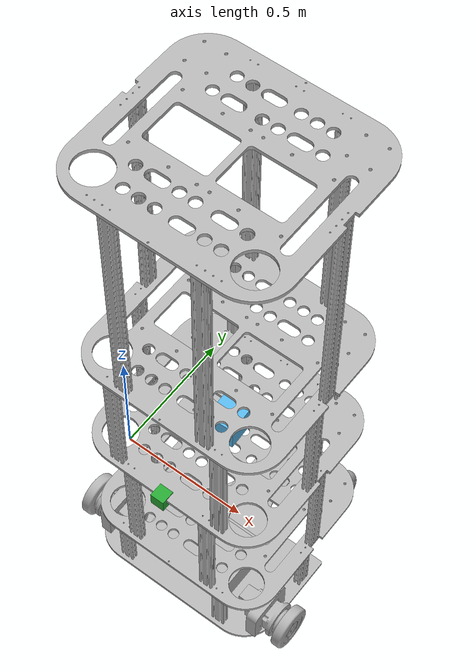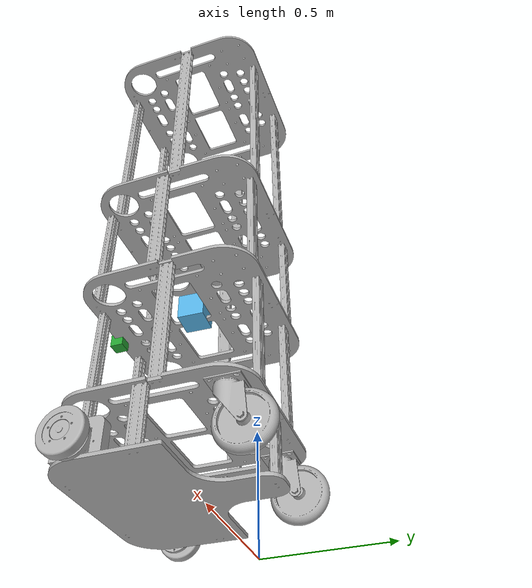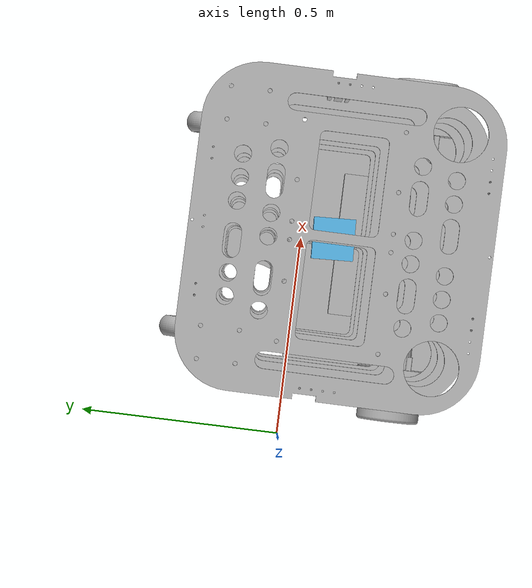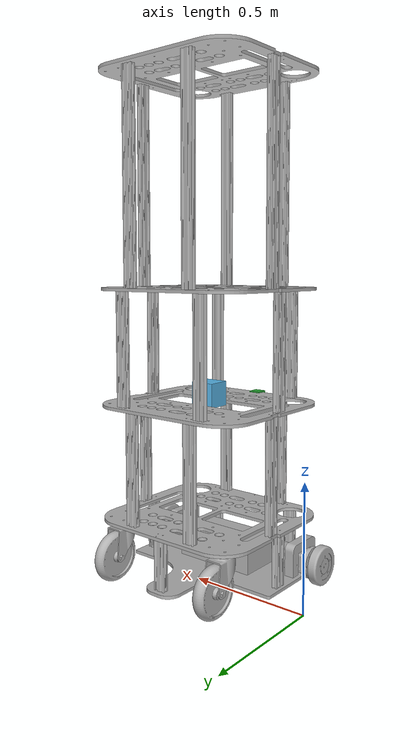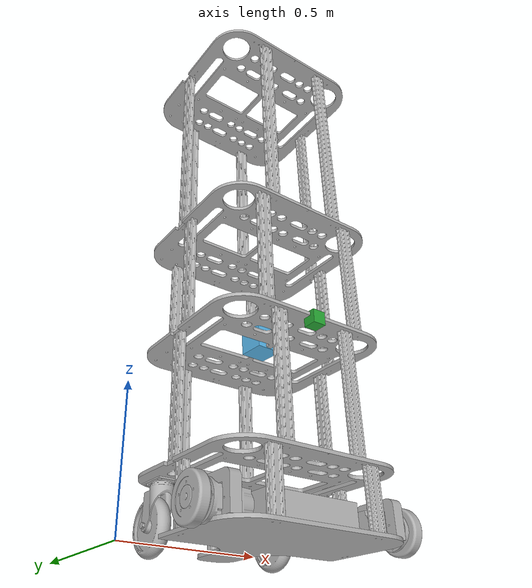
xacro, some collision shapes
<?xml version="1.0" ?>
<robot name="nanny" xmlns:xacro="http://www.ros.org/wiki/xacro">

<xacro:include filename="$(find nanny_description)/urdf/materials.xacro" />
<xacro:include filename="$(find nanny_description)/urdf/nanny.trans" />
<xacro:include filename="$(find nanny_description)/urdf/nanny.gazebo" />

<xacro:property name="cameraSize" value="0.05"/>
<xacro:property name="cameraMass" value="0.1"/>

<link name="dummy">
</link>
<joint name="dummy_joint" type="fixed">
 <parent link="dummy"/>
 <child link="base_link"/>
</joint>

<link name="base_link">
  <inertial>
    <origin rpy="0 0 0" xyz="0.4999709515803751 -0.14927018860497332 0.005627893204435959"/>
    <mass value="11.175436537973397"/>
    <inertia ixx="0.25996" ixy="-9.5e-05" ixz="0.0" iyy="0.399589" iyz="0.0" izz="0.659248"/>
  </inertial>
  <visual>
    <origin rpy="0 0 0" xyz="0 0 0.021978"/>
    <geometry>
      <mesh filename="package://nanny_description/meshes/base_link.stl" scale="0.001 0.001 0.001"/>
    </geometry>
    <material name="silver"/>
  </visual>
  <collision>
    <origin rpy="0 0 0" xyz="0 0 0.021978"/>
    <geometry>
      <mesh filename="package://nanny_description/meshes/base_link.stl" scale="0.001 0.001 0.001"/>
    </geometry>
  </collision>
</link>

<link name="motor_v1__1__1">
  <inertial>
    <origin rpy="0 0 0" xyz="0.02586757075254814 1.0048361068326628e-05 0.044664692417302816"/>
    <mass value="11.11827564139619"/>
    <inertia ixx="0.013324" ixy="-3.4e-05" ixz="-3.4e-05" iyy="0.040366" iyz="-7e-06" izz="0.04016"/>
  </inertial>
  <visual>
    <origin rpy="0 0 0" xyz="-0.144318 0.27111 0.01"/>
    <geometry>
      <mesh filename="package://nanny_description/meshes/motor_v1__1__1.stl" scale="0.001 0.001 0.001"/>
    </geometry>
    <material name="silver"/>
  </visual>
  <collision>
    <origin rpy="0 0 0" xyz="-0.144318 0.27111 0.01"/>
    <geometry>
      <mesh filename="package://nanny_description/meshes/motor_v1__1__1.stl" scale="0.001 0.001 0.001"/>
    </geometry>
  </collision>
</link>

<link name="motor_v1_1">
  <inertial>
    <origin rpy="0 0 0" xyz="0.019132519213283405 -1.0357512956582493e-05 0.044664692417303135"/>
    <mass value="11.11827564139619"/>
    <inertia ixx="0.013324" ixy="-3.4e-05" ixz="3.4e-05" iyy="0.040366" iyz="7e-06" izz="0.04016"/>
  </inertial>
  <visual>
    <origin rpy="0 0 0" xyz="-0.808518 0.27111 0.01"/>
    <geometry>
      <mesh filename="package://nanny_description/meshes/motor_v1_1.stl" scale="0.001 0.001 0.001"/>
    </geometry>
    <material name="silver"/>
  </visual>
  <collision>
    <origin rpy="0 0 0" xyz="-0.808518 0.27111 0.01"/>
    <geometry>
      <mesh filename="package://nanny_description/meshes/motor_v1_1.stl" scale="0.001 0.001 0.001"/>
    </geometry>
  </collision>
</link>

<link name="wheel_v1__1__1">
  <inertial>
    <origin rpy="0 0 0" xyz="0.01532236191425454 9.571463954721748e-05 -0.00011317034417850091"/>
    <mass value="0.42973723468390157"/>
    <inertia ixx="0.001747" ixy="-0.0" ixz="0.0" iyy="0.000923" iyz="0.0" izz="0.000923"/>
  </inertial>
  <visual>
    <origin rpy="0 0 0" xyz="-0.068818 0.271212 -0.034669"/>
    <geometry>
      <mesh filename="package://nanny_description/meshes/wheel_v1__1__1.stl" scale="0.001 0.001 0.001"/>
    </geometry>
    <material name="silver"/>
  </visual>
  <collision>
    <origin rpy="0 0 0" xyz="-0.068818 0.271212 -0.034669"/>
    <geometry>
      <mesh filename="package://nanny_description/meshes/wheel_v1__1__1.stl" scale="0.001 0.001 0.001"/>
    </geometry>
  </collision>
</link>

<link name="wheel_v1_1">
  <inertial>
    <origin rpy="0 0 0" xyz="-0.01532227194842306 -9.502379143522255e-05 -0.0001131703441781956"/>
    <mass value="0.42973723468390157"/>
    <inertia ixx="0.001747" ixy="-0.0" ixz="-0.0" iyy="0.000923" iyz="-0.0" izz="0.000923"/>
  </inertial>
  <visual>
    <origin rpy="0 0 0" xyz="-0.931018 0.271009 -0.034669"/>
    <geometry>
      <mesh filename="package://nanny_description/meshes/wheel_v1_1.stl" scale="0.001 0.001 0.001"/>
    </geometry>
    <material name="silver"/>
  </visual>
  <collision>
    <origin rpy="0 0 0" xyz="-0.931018 0.271009 -0.034669"/>
    <geometry>
      <mesh filename="package://nanny_description/meshes/wheel_v1_1.stl" scale="0.001 0.001 0.001"/>
    </geometry>
  </collision>
</link>

<link name="extrude_1">
  <inertial>
    <origin rpy="0 0 0" xyz="0.004400038989383126 0.010926590538250985 0.10401739320443476"/>
    <mass value="0.10302216766599791"/>
    <inertia ixx="0.000397" ixy="-0.0" ixz="0.0" iyy="0.000378" iyz="0.0" izz="3.3e-05"/>
  </inertial>
  <visual>
    <origin rpy="0 0 0" xyz="-0.826018 0.094334 0.0227"/>
    <geometry>
      <mesh filename="package://nanny_description/meshes/extrude_1.stl" scale="0.001 0.001 0.001"/>
    </geometry>
    <material name="silver"/>
  </visual>
  <collision>
    <origin rpy="0 0 0" xyz="-0.826018 0.094334 0.01"/>
    <geometry>
      <mesh filename="package://nanny_description/meshes/extrude_1.stl" scale="0.001 0.001 0.001"/>
    </geometry>
  </collision>
</link>

<link name="extrude_2">
  <inertial>
    <origin rpy="0 0 0" xyz="-0.01142996101061719 -0.00832636863072056 0.10401739320443487"/>
    <mass value="0.10302216766599791"/>
    <inertia ixx="0.000397" ixy="-0.0" ixz="0.0" iyy="0.000378" iyz="0.0" izz="3.3e-05"/>
  </inertial>
  <visual>
    <origin rpy="0 0 0" xyz="-0.180818 0.074834 0.01"/>
    <geometry>
      <mesh filename="package://nanny_description/meshes/extrude_2.stl" scale="0.001 0.001 0.001"/>
    </geometry>
    <material name="silver"/>
  </visual>
  <collision>
    <origin rpy="0 0 0" xyz="-0.180818 0.074834 0.01"/>
    <geometry>
      <mesh filename="package://nanny_description/meshes/extrude_2.stl" scale="0.001 0.001 0.001"/>
    </geometry>
  </collision>
</link>

<link name="extrude_3">
  <inertial>
    <origin rpy="0 0 0" xyz="-0.01963652956649553 0.008650098753062774 0.1040173932044348"/>
    <mass value="0.10302216766599791"/>
    <inertia ixx="0.000378" ixy="0.0" ixz="-0.0" iyy="0.000397" iyz="-0.0" izz="3.3e-05"/>
  </inertial>
  <visual>
    <origin rpy="0 0 0" xyz="-0.321318 0.379834 0.01"/>
    <geometry>
      <mesh filename="package://nanny_description/meshes/extrude_3.stl" scale="0.001 0.001 0.001"/>
    </geometry>
    <material name="silver"/>
  </visual>
  <collision>
    <origin rpy="0 0 0" xyz="-0.321318 0.379834 0.01"/>
    <geometry>
      <mesh filename="package://nanny_description/meshes/extrude_3.stl" scale="0.001 0.001 0.001"/>
    </geometry>
  </collision>
</link>

<link name="extrude_4">
  <inertial>
    <origin rpy="0 0 0" xyz="0.008100043308759242 -0.0015734171294430332 0.10401739320443494"/>
    <mass value="0.10302216766599791"/>
    <inertia ixx="0.000378" ixy="0.0" ixz="-0.0" iyy="0.000397" iyz="0.0" izz="3.3e-05"/>
  </inertial>
  <visual>
    <origin rpy="0 0 0" xyz="-0.690018 0.369334 0.01"/>
    <geometry>
      <mesh filename="package://nanny_description/meshes/extrude_4.stl" scale="0.001 0.001 0.001"/>
    </geometry>
    <material name="silver"/>
  </visual>
  <collision>
    <origin rpy="0 0 0" xyz="-0.690018 0.369334 0.01"/>
    <geometry>
      <mesh filename="package://nanny_description/meshes/extrude_4.stl" scale="0.001 0.001 0.001"/>
    </geometry>
  </collision>
</link>

<link name="extrude_5">
  <inertial>
    <origin rpy="0 0 0" xyz="-0.0200702585732202 -0.001573523610051586 0.10401739320443444"/>
    <mass value="0.10302216766599791"/>
    <inertia ixx="0.000378" ixy="0.0" ixz="-0.0" iyy="0.000397" iyz="0.0" izz="3.3e-05"/>
  </inertial>
  <visual>
    <origin rpy="0 0 0" xyz="-0.519747 -0.230753 0.01"/>
    <geometry>
      <mesh filename="package://nanny_description/meshes/extrude_5.stl" scale="0.001 0.001 0.001"/>
    </geometry>
    <material name="silver"/>
  </visual>
  <collision>
    <origin rpy="0 0 0" xyz="-0.519747 -0.230753 0.01"/>
    <geometry>
      <mesh filename="package://nanny_description/meshes/extrude_5.stl" scale="0.001 0.001 0.001"/>
    </geometry>
  </collision>
</link>

<link name="battery_v1_1">
  <inertial>
    <origin rpy="0 0 0" xyz="-0.17779995501708884 0.11429984542405569 0.05079989320443594"/>
    <mass value="9.072981380925"/>
    <inertia ixx="0.047316" ixy="-0.0" ixz="0.0" iyy="0.103412" iyz="-0.0" izz="0.135119"/>
  </inertial>
  <visual>
    <origin rpy="0 0 0" xyz="-0.674918 0.31791 0.01"/>
    <geometry>
      <mesh filename="package://nanny_description/meshes/battery_v1_1.stl" scale="0.001 0.001 0.001"/>
    </geometry>
    <material name="silver"/>
  </visual>
  <collision>
    <origin rpy="0 0 0" xyz="-0.674918 0.31791 0.01"/>
    <geometry>
      <mesh filename="package://nanny_description/meshes/battery_v1_1.stl" scale="0.001 0.001 0.001"/>
    </geometry>
  </collision>
</link>

<link name="bracket_v1_1">
  <inertial>
    <origin rpy="0 0 0" xyz="-0.0006279832134617469 0.06485509114929999 0.07514537258229421"/>
    <mass value="4.089659585571246"/>
    <inertia ixx="0.019505" ixy="0.0" ixz="-0.0" iyy="0.00638" iyz="1.2e-05" izz="0.014216"/>
  </inertial>
  <visual>
    <origin rpy="0 0 0" xyz="-0.181515 0.330913 0.01"/>
    <geometry>
      <mesh filename="package://nanny_description/meshes/bracket_v1_1.stl" scale="0.001 0.001 0.001"/>
    </geometry>
    <material name="silver"/>
  </visual>
  <collision>
    <origin rpy="0 0 0" xyz="-0.181515 0.330913 0.01"/>
    <geometry>
      <mesh filename="package://nanny_description/meshes/bracket_v1_1.stl" scale="0.001 0.001 0.001"/>
    </geometry>
  </collision>
</link>

<link name="bracket_v1__1__1">
  <inertial>
    <origin rpy="0 0 0" xyz="-0.0006288607920780231 0.06485509114934251 0.07514537258229424"/>
    <mass value="4.089659585571246"/>
    <inertia ixx="0.019505" ixy="0.0" ixz="-0.0" iyy="0.00638" iyz="1.2e-05" izz="0.014216"/>
  </inertial>
  <visual>
    <origin rpy="0 0 0" xyz="-0.818321 0.335913 0.01"/>
    <geometry>
      <mesh filename="package://nanny_description/meshes/bracket_v1__1__1.stl" scale="0.001 0.001 0.001"/>
    </geometry>
    <material name="silver"/>
  </visual>
  <collision>
    <origin rpy="0 0 0" xyz="-0.818321 0.335913 0.01"/>
    <geometry>
      <mesh filename="package://nanny_description/meshes/bracket_v1__1__1.stl" scale="0.001 0.001 0.001"/>
    </geometry>
  </collision>
</link>

<link name="universalplate_v1_1">
  <inertial>
    <origin rpy="0 0 0" xyz="0.1605893348499859 0.3200952825015396 0.0063498932044359635"/>
    <mass value="10.535008068288963"/>
    <inertia ixx="0.438684" ixy="-0.000175" ixz="0.0" iyy="0.454628" iyz="0.0" izz="0.893028"/>
  </inertial>
  <visual>
    <origin rpy="0 0 0" xyz="-0.339208 0.371284 -0.198035"/>
    <geometry>
      <mesh filename="package://nanny_description/meshes/universalplate_v1_1.stl" scale="0.001 0.001 0.001"/>
    </geometry>
    <material name="silver"/>
  </visual>
  <collision>
    <origin rpy="0 0 0" xyz="-0.339208 0.371284 -0.198035"/>
    <geometry>
      <mesh filename="package://nanny_description/meshes/universalplate_v1_1.stl" scale="0.001 0.001 0.001"/>
    </geometry>
  </collision>
</link>

<link name="castorconnect_v1_1">
  <inertial>
    <origin rpy="0 0 0" xyz="-2.6157613655652945e-07 0.012712389897948373 -0.03991053178347348"/>
    <mass value="0.7450704925069065"/>
    <inertia ixx="0.002151" ixy="-0.0" ixz="-0.0" iyy="0.001975" iyz="0.000571" izz="0.001293"/>
  </inertial>
  <visual>
    <origin rpy="0 0 0" xyz="-0.240208 -0.166116 -0.198035"/>
    <geometry>
      <mesh filename="package://nanny_description/meshes/castorconnect_v1_1.stl" scale="0.001 0.001 0.001"/>
    </geometry>
    <material name="silver"/>
  </visual>
  <collision>
    <origin rpy="0 0 0" xyz="-0.240208 -0.166116 -0.198035"/>
    <geometry>
      <mesh filename="package://nanny_description/meshes/castorconnect_v1_1.stl" scale="0.001 0.001 0.001"/>
    </geometry>
  </collision>
</link>

<link name="castorconnect_v1__1__1">
  <inertial>
    <origin rpy="0 0 0" xyz="-2.6157613552957315e-07 0.012712389897983678 -0.03991053178347348"/>
    <mass value="0.7450704925069065"/>
    <inertia ixx="0.002151" ixy="-0.0" ixz="-0.0" iyy="0.001975" iyz="0.000571" izz="0.001293"/>
  </inertial>
  <visual>
    <origin rpy="0 0 0" xyz="-0.759408 -0.166116 -0.198035"/>
    <geometry>
      <mesh filename="package://nanny_description/meshes/castorconnect_v1__1__1.stl" scale="0.001 0.001 0.001"/>
    </geometry>
    <material name="silver"/>
  </visual>
  <collision>
    <origin rpy="0 0 0" xyz="-0.759408 -0.166116 -0.198035"/>
    <geometry>
      <mesh filename="package://nanny_description/meshes/castorconnect_v1__1__1.stl" scale="0.001 0.001 0.001"/>
    </geometry>
  </collision>
</link>

<link name="castor_v1_1">
  <inertial>
    <origin rpy="0 0 0" xyz="-0.01270026238790986 -3.9525341968826844e-07 -1.0679556407267032e-07"/>
    <mass value="2.9032959895157067"/>
    <inertia ixx="0.015662" ixy="0.0" ixz="-0.0" iyy="0.008205" iyz="0.0" izz="0.008205"/>
  </inertial>
  <visual>
    <origin rpy="0 0 0" xyz="-0.253053 -0.228029 -0.058335"/>
    <geometry>
      <mesh filename="package://nanny_description/meshes/castor_v1_1.stl" scale="0.001 0.001 0.001"/>
    </geometry>
    <material name="silver"/>
  </visual>
  <collision>
    <origin rpy="0 0 0" xyz="-0.253053 -0.228029 -0.058335"/>
    <geometry>
      <mesh filename="package://nanny_description/meshes/castor_v1_1.stl" scale="0.001 0.001 0.001"/>
    </geometry>
  </collision>
</link>

<link name="castor_v1__1__1">
  <inertial>
    <origin rpy="0 0 0" xyz="0.012699737612091533 -3.952533863815777e-07 -1.0679556403103696e-07"/>
    <mass value="2.9032959895157067"/>
    <inertia ixx="0.015662" ixy="0.0" ixz="0.0" iyy="0.008205" iyz="0.0" izz="0.008205"/>
  </inertial>
  <visual>
    <origin rpy="0 0 0" xyz="-0.746563 -0.221679 -0.058335"/>
    <geometry>
      <mesh filename="package://nanny_description/meshes/castor_v1__1__1.stl" scale="0.001 0.001 0.001"/>
    </geometry>
    <material name="silver"/>
  </visual>
  <collision>
    <origin rpy="0 0 0" xyz="-0.746563 -0.221679 -0.058335"/>
    <geometry>
      <mesh filename="package://nanny_description/meshes/castor_v1__1__1.stl" scale="0.001 0.001 0.001"/>
    </geometry>
  </collision>
</link>

<link name="extrude2_1">
  <inertial>
    <origin rpy="0 0 0" xyz="-0.002890757990438919 0.00959061634807562 0.22851739320443554"/>
    <mass value="0.22633084047986823"/>
    <inertia ixx="0.003955" ixy="0.0" ixz="0.0" iyy="0.003997" iyz="0.0" izz="7.2e-05"/>
  </inertial>
  <visual>
    <origin rpy="0 0 0" xyz="-0.354708 0.380784 -0.210735"/>
    <geometry>
      <mesh filename="package://nanny_description/meshes/extrude2_1.stl" scale="0.001 0.001 0.001"/>
    </geometry>
    <material name="silver"/>
  </visual>
  <collision>
    <origin rpy="0 0 0" xyz="-0.354708 0.380784 -0.210735"/>
    <geometry>
      <mesh filename="package://nanny_description/meshes/extrude2_1.stl" scale="0.001 0.001 0.001"/>
    </geometry>
  </collision>
</link>

<link name="extrude2_2">
  <inertial>
    <origin rpy="0 0 0" xyz="-0.00810026071370551 0.0015739271981915492 0.22851739320443554"/>
    <mass value="0.22633084047986823"/>
    <inertia ixx="0.003955" ixy="0.0" ixz="-0.0" iyy="0.003997" iyz="0.0" izz="7.2e-05"/>
  </inertial>
  <visual>
    <origin rpy="0 0 0" xyz="-0.655908 0.372759 -0.210735"/>
    <geometry>
      <mesh filename="package://nanny_description/meshes/extrude2_2.stl" scale="0.001 0.001 0.001"/>
    </geometry>
    <material name="silver"/>
  </visual>
  <collision>
    <origin rpy="0 0 0" xyz="-0.655908 0.372759 -0.210735"/>
    <geometry>
      <mesh filename="package://nanny_description/meshes/extrude2_2.stl" scale="0.001 0.001 0.001"/>
    </geometry>
  </collision>
</link>

<link name="extrude2_3">
  <inertial>
    <origin rpy="0 0 0" xyz="-0.0015740028769496428 -0.016899893579216042 0.22851739320443565"/>
    <mass value="0.22633084047986823"/>
    <inertia ixx="0.003997" ixy="-0.0" ixz="0.0" iyy="0.003955" iyz="0.0" izz="7.2e-05"/>
  </inertial>
  <visual>
    <origin rpy="0 0 0" xyz="-0.831708 0.016584 -0.210735"/>
    <geometry>
      <mesh filename="package://nanny_description/meshes/extrude2_3.stl" scale="0.001 0.001 0.001"/>
    </geometry>
    <material name="silver"/>
  </visual>
  <collision>
    <origin rpy="0 0 0" xyz="-0.831708 0.016584 -0.210735"/>
    <geometry>
      <mesh filename="package://nanny_description/meshes/extrude2_3.stl" scale="0.001 0.001 0.001"/>
    </geometry>
  </collision>
</link>

<link name="extrude2_4">
  <inertial>
    <origin rpy="0 0 0" xyz="0.0015732968992555885 0.008100102021695171 0.22851739320443554"/>
    <mass value="0.22633084047986823"/>
    <inertia ixx="0.003997" ixy="-0.0" ixz="0.0" iyy="0.003955" iyz="0.0" izz="7.2e-05"/>
  </inertial>
  <visual>
    <origin rpy="0 0 0" xyz="-0.167723 0.041484 -0.210735"/>
    <geometry>
      <mesh filename="package://nanny_description/meshes/extrude2_4.stl" scale="0.001 0.001 0.001"/>
    </geometry>
    <material name="silver"/>
  </visual>
  <collision>
    <origin rpy="0 0 0" xyz="-0.167723 0.041484 -0.210735"/>
    <geometry>
      <mesh filename="package://nanny_description/meshes/extrude2_4.stl" scale="0.001 0.001 0.001"/>
    </geometry>
  </collision>
</link>

<link name="extrude2_5">
  <inertial>
    <origin rpy="0 0 0" xyz="0.005510612840938678 -0.005475807193469073 0.22851739320443554"/>
    <mass value="0.22633084047986823"/>
    <inertia ixx="0.003955" ixy="0.0" ixz="0.0" iyy="0.003997" iyz="0.0" izz="7.2e-05"/>
  </inertial>
  <visual>
    <origin rpy="0 0 0" xyz="-0.346208 -0.234216 -0.210735"/>
    <geometry>
      <mesh filename="package://nanny_description/meshes/extrude2_5.stl" scale="0.001 0.001 0.001"/>
    </geometry>
    <material name="silver"/>
  </visual>
  <collision>
    <origin rpy="0 0 0" xyz="-0.346208 -0.234216 -0.210735"/>
    <geometry>
      <mesh filename="package://nanny_description/meshes/extrude2_5.stl" scale="0.001 0.001 0.001"/>
    </geometry>
  </collision>
</link>

<link name="extrude2_6">
  <inertial>
    <origin rpy="0 0 0" xyz="-0.01631552370564393 0.00532858224376756 0.22851739320443565"/>
    <mass value="0.22633084047986823"/>
    <inertia ixx="0.003955" ixy="0.0" ixz="-0.0" iyy="0.003997" iyz="-0.0" izz="7.2e-05"/>
  </inertial>
  <visual>
    <origin rpy="0 0 0" xyz="-0.664208 -0.223316 -0.210735"/>
    <geometry>
      <mesh filename="package://nanny_description/meshes/extrude2_6.stl" scale="0.001 0.001 0.001"/>
    </geometry>
    <material name="silver"/>
  </visual>
  <collision>
    <origin rpy="0 0 0" xyz="-0.664208 -0.223316 -0.210735"/>
    <geometry>
      <mesh filename="package://nanny_description/meshes/extrude2_6.stl" scale="0.001 0.001 0.001"/>
    </geometry>
  </collision>
</link>

<link name="universalplate_v1__1__1">
  <inertial>
    <origin rpy="0 0 0" xyz="0.16213352060787023 0.3193159061923979 0.006349893204436463"/>
    <mass value="10.535008068288963"/>
    <inertia ixx="0.438682" ixy="-9.8e-05" ixz="0.0" iyy="0.454629" iyz="0.0" izz="0.893028"/>
  </inertial>
  <visual>
    <origin rpy="0 0 0" xyz="-0.339287 0.371159 -0.66777"/>
    <geometry>
      <mesh filename="package://nanny_description/meshes/universalplate_v1__1__1.stl" scale="0.001 0.001 0.001"/>
    </geometry>
    <material name="silver"/>
  </visual>
  <collision>
    <origin rpy="0 0 0" xyz="-0.339287 0.371159 -0.66777"/>
    <geometry>
      <mesh filename="package://nanny_description/meshes/universalplate_v1__1__1.stl" scale="0.001 0.001 0.001"/>
    </geometry>
  </collision>
</link>

<link name="extrude3_1">
  <inertial>
    <origin rpy="0 0 0" xyz="0.007057659000020422 0.006954919789942726 0.2285173932044362"/>
    <mass value="0.22633084047986823"/>
    <inertia ixx="0.003955" ixy="0.0" ixz="0.0" iyy="0.003997" iyz="0.0" izz="7.2e-05"/>
  </inertial>
  <visual>
    <origin rpy="0 0 0" xyz="-0.294756 0.377544 -0.68047"/>
    <geometry>
      <mesh filename="package://nanny_description/meshes/extrude3_1.stl" scale="0.001 0.001 0.001"/>
    </geometry>
    <material name="silver"/>
  </visual>
  <collision>
    <origin rpy="0 0 0" xyz="-0.294756 0.377544 -0.68047"/>
    <geometry>
      <mesh filename="package://nanny_description/meshes/extrude3_1.stl" scale="0.001 0.001 0.001"/>
    </geometry>
  </collision>
</link>

<link name="extrude3_2">
  <inertial>
    <origin rpy="0 0 0" xyz="-0.008092713005139363 0.0016131311036912122 0.2285173932044362"/>
    <mass value="0.22633084047986823"/>
    <inertia ixx="0.003955" ixy="0.0" ixz="0.0" iyy="0.003997" iyz="-0.0" izz="7.2e-05"/>
  </inertial>
  <visual>
    <origin rpy="0 0 0" xyz="-0.705977 0.374254 -0.68047"/>
    <geometry>
      <mesh filename="package://nanny_description/meshes/extrude3_2.stl" scale="0.001 0.001 0.001"/>
    </geometry>
    <material name="silver"/>
  </visual>
  <collision>
    <origin rpy="0 0 0" xyz="-0.705977 0.374254 -0.68047"/>
    <geometry>
      <mesh filename="package://nanny_description/meshes/extrude3_2.stl" scale="0.001 0.001 0.001"/>
    </geometry>
  </collision>
</link>

<link name="extrude3_3">
  <inertial>
    <origin rpy="0 0 0" xyz="-0.004346858320038893 0.010947064989827213 0.22851739320443643"/>
    <mass value="0.22633084047986823"/>
    <inertia ixx="0.003997" ixy="-0.0" ixz="0.0" iyy="0.003955" iyz="0.0" izz="7.2e-05"/>
  </inertial>
  <visual>
    <origin rpy="0 0 0" xyz="-0.836218 0.096679 -0.68047"/>
    <geometry>
      <mesh filename="package://nanny_description/meshes/extrude3_3.stl" scale="0.001 0.001 0.001"/>
    </geometry>
    <material name="silver"/>
  </visual>
  <collision>
    <origin rpy="0 0 0" xyz="-0.836218 0.096679 -0.68047"/>
    <geometry>
      <mesh filename="package://nanny_description/meshes/extrude3_3.stl" scale="0.001 0.001 0.001"/>
    </geometry>
  </collision>
</link>

<link name="extrude3_4">
  <inertial>
    <origin rpy="0 0 0" xyz="-0.022948659361198276 0.010611331367616772 0.22851739320443476"/>
    <mass value="0.22633084047986823"/>
    <inertia ixx="0.003955" ixy="0.0" ixz="0.0" iyy="0.003997" iyz="0.0" izz="7.2e-05"/>
  </inertial>
  <visual>
    <origin rpy="0 0 0" xyz="-0.718816 -0.216805 -0.68047"/>
    <geometry>
      <mesh filename="package://nanny_description/meshes/extrude3_4.stl" scale="0.001 0.001 0.001"/>
    </geometry>
    <material name="silver"/>
  </visual>
  <collision>
    <origin rpy="0 0 0" xyz="-0.718816 -0.216805 -0.68047"/>
    <geometry>
      <mesh filename="package://nanny_description/meshes/extrude3_4.stl" scale="0.001 0.001 0.001"/>
    </geometry>
  </collision>
</link>

<link name="extrude3_5">
  <inertial>
    <origin rpy="0 0 0" xyz="0.0016125120246620883 0.008092360390156803 0.22851739320443554"/>
    <mass value="0.22633084047986823"/>
    <inertia ixx="0.003997" ixy="-0.0" ixz="-0.0" iyy="0.003955" iyz="-0.0" izz="7.2e-05"/>
  </inertial>
  <visual>
    <origin rpy="0 0 0" xyz="-0.169055 0.090614 -0.68047"/>
    <geometry>
      <mesh filename="package://nanny_description/meshes/extrude3_5.stl" scale="0.001 0.001 0.001"/>
    </geometry>
    <material name="silver"/>
  </visual>
  <collision>
    <origin rpy="0 0 0" xyz="-0.169055 0.090614 -0.68047"/>
    <geometry>
      <mesh filename="package://nanny_description/meshes/extrude3_5.stl" scale="0.001 0.001 0.001"/>
    </geometry>
  </collision>
</link>

<link name="extrude3_6">
  <inertial>
    <origin rpy="0 0 0" xyz="-0.007153044335591385 0.003850087755044612 0.22851739320443576"/>
    <mass value="0.22633084047986823"/>
    <inertia ixx="0.003955" ixy="0.0" ixz="-0.0" iyy="0.003997" iyz="0.0" izz="7.2e-05"/>
  </inertial>
  <visual>
    <origin rpy="0 0 0" xyz="-0.309164 -0.224709 -0.68047"/>
    <geometry>
      <mesh filename="package://nanny_description/meshes/extrude3_6.stl" scale="0.001 0.001 0.001"/>
    </geometry>
    <material name="silver"/>
  </visual>
  <collision>
    <origin rpy="0 0 0" xyz="-0.309164 -0.224709 -0.68047"/>
    <geometry>
      <mesh filename="package://nanny_description/meshes/extrude3_6.stl" scale="0.001 0.001 0.001"/>
    </geometry>
  </collision>
</link>

<link name="universalplate_v1__2__1">
  <inertial>
    <origin rpy="0 0 0" xyz="0.16213319504084872 0.31931566568776937 0.006349893204437018"/>
    <mass value="10.535008068288963"/>
    <inertia ixx="0.438682" ixy="-9.8e-05" ixz="0.0" iyy="0.454629" iyz="-0.0" izz="0.893028"/>
  </inertial>
  <visual>
    <origin rpy="0 0 0" xyz="-0.339211 0.371243 -1.13751"/>
    <geometry>
      <mesh filename="package://nanny_description/meshes/universalplate_v1__2__1.stl" scale="0.001 0.001 0.001"/>
    </geometry>
    <material name="silver"/>
  </visual>
  <collision>
    <origin rpy="0 0 0" xyz="-0.339211 0.371243 -1.13751"/>
    <geometry>
      <mesh filename="package://nanny_description/meshes/universalplate_v1__2__1.stl" scale="0.001 0.001 0.001"/>
    </geometry>
  </collision>
</link>

<link name="extrude3__1__1">
  <inertial>
    <origin rpy="0 0 0" xyz="-0.02294895351263415 0.01061053896639691 0.41901739320443676"/>
    <mass value="0.4150079663516937"/>
    <inertia ixx="0.024316" ixy="0.0" ixz="-0.0" iyy="0.024393" iyz="-0.0" izz="0.000132"/>
  </inertial>
  <visual>
    <origin rpy="0 0 0" xyz="-0.374645 0.382024 -1.15021"/>
    <geometry>
      <mesh filename="package://nanny_description/meshes/extrude3__1__1.stl" scale="0.001 0.001 0.001"/>
    </geometry>
    <material name="silver"/>
  </visual>
  <collision>
    <origin rpy="0 0 0" xyz="-0.374645 0.382024 -1.15021"/>
    <geometry>
      <mesh filename="package://nanny_description/meshes/extrude3__1__1.stl" scale="0.001 0.001 0.001"/>
    </geometry>
  </collision>
</link>

<link name="extrude3__1__2">
  <inertial>
    <origin rpy="0 0 0" xyz="-0.010904807975125386 0.004452819988318535 0.41901739320443676"/>
    <mass value="0.4150079663516937"/>
    <inertia ixx="0.024316" ixy="0.0" ixz="-0.0" iyy="0.024393" iyz="-0.0" izz="0.000132"/>
  </inertial>
  <visual>
    <origin rpy="0 0 0" xyz="-0.658886 0.377162 -1.15021"/>
    <geometry>
      <mesh filename="package://nanny_description/meshes/extrude3__1__2.stl" scale="0.001 0.001 0.001"/>
    </geometry>
    <material name="silver"/>
  </visual>
  <collision>
    <origin rpy="0 0 0" xyz="-0.658886 0.377162 -1.15021"/>
    <geometry>
      <mesh filename="package://nanny_description/meshes/extrude3__1__2.stl" scale="0.001 0.001 0.001"/>
    </geometry>
  </collision>
</link>

<link name="extrude3__1__3">
  <inertial>
    <origin rpy="0 0 0" xyz="-0.0016126785482952766 -0.00809226097769293 0.41901739320443676"/>
    <mass value="0.4150079663516937"/>
    <inertia ixx="0.024393" ixy="-0.0" ixz="-0.0" iyy="0.024316" iyz="-0.0" izz="0.000132"/>
  </inertial>
  <visual>
    <origin rpy="0 0 0" xyz="-0.83349 0.027726 -1.15021"/>
    <geometry>
      <mesh filename="package://nanny_description/meshes/extrude3__1__3.stl" scale="0.001 0.001 0.001"/>
    </geometry>
    <material name="silver"/>
  </visual>
  <collision>
    <origin rpy="0 0 0" xyz="-0.83349 0.027726 -1.15021"/>
    <geometry>
      <mesh filename="package://nanny_description/meshes/extrude3__1__3.stl" scale="0.001 0.001 0.001"/>
    </geometry>
  </collision>
</link>

<link name="extrude3__1__4">
  <inertial>
    <origin rpy="0 0 0" xyz="0.001655012074481016 0.016892059023513047 0.41901739320443676"/>
    <mass value="0.4150079663516937"/>
    <inertia ixx="0.024393" ixy="-0.0" ixz="-0.0" iyy="0.024316" iyz="-0.0" izz="0.000132"/>
  </inertial>
  <visual>
    <origin rpy="0 0 0" xyz="-0.169277 0.049619 -1.15021"/>
    <geometry>
      <mesh filename="package://nanny_description/meshes/extrude3__1__4.stl" scale="0.001 0.001 0.001"/>
    </geometry>
    <material name="silver"/>
  </visual>
  <collision>
    <origin rpy="0 0 0" xyz="-0.169277 0.049619 -1.15021"/>
    <geometry>
      <mesh filename="package://nanny_description/meshes/extrude3__1__4.stl" scale="0.001 0.001 0.001"/>
    </geometry>
  </collision>
</link>

<link name="extrude3__1__5">
  <inertial>
    <origin rpy="0 0 0" xyz="0.014052568231956886 -0.004468268786168045 0.4190173932044359"/>
    <mass value="0.4150079663516937"/>
    <inertia ixx="0.024316" ixy="0.0" ixz="-0.0" iyy="0.024393" iyz="-0.0" izz="0.000132"/>
  </inertial>
  <visual>
    <origin rpy="0 0 0" xyz="-0.636826 -0.231827 -1.15021"/>
    <geometry>
      <mesh filename="package://nanny_description/meshes/extrude3__1__5.stl" scale="0.001 0.001 0.001"/>
    </geometry>
    <material name="silver"/>
  </visual>
  <collision>
    <origin rpy="0 0 0" xyz="-0.636826 -0.231827 -1.15021"/>
    <geometry>
      <mesh filename="package://nanny_description/meshes/extrude3__1__5.stl" scale="0.001 0.001 0.001"/>
    </geometry>
  </collision>
</link>

<link name="extrude3__1__6">
  <inertial>
    <origin rpy="0 0 0" xyz="0.008099804448438885 -3.8750442625357095e-05 0.41901739320443654"/>
    <mass value="0.4150079663516937"/>
    <inertia ixx="0.024316" ixy="0.0" ixz="0.0" iyy="0.024393" iyz="0.0" izz="0.000132"/>
  </inertial>
  <visual>
    <origin rpy="0 0 0" xyz="-0.346508 -0.228728 -1.15021"/>
    <geometry>
      <mesh filename="package://nanny_description/meshes/extrude3__1__6.stl" scale="0.001 0.001 0.001"/>
    </geometry>
    <material name="silver"/>
  </visual>
  <collision>
    <origin rpy="0 0 0" xyz="-0.346508 -0.228728 -1.15021"/>
    <geometry>
      <mesh filename="package://nanny_description/meshes/extrude3__1__6.stl" scale="0.001 0.001 0.001"/>
    </geometry>
  </collision>
</link>

<link name="universalplate_v1__3__1">
  <inertial>
    <origin rpy="0 0 0" xyz="0.13713357837476375 0.3194372143564179 0.006349893204435908"/>
    <mass value="10.535008068288963"/>
    <inertia ixx="0.438682" ixy="-9.8e-05" ixz="0.0" iyy="0.454629" iyz="0.0" izz="0.893028"/>
  </inertial>
  <visual>
    <origin rpy="0 0 0" xyz="-0.364196 0.371448 -1.98824"/>
    <geometry>
      <mesh filename="package://nanny_description/meshes/universalplate_v1__3__1.stl" scale="0.001 0.001 0.001"/>
    </geometry>
    <material name="silver"/>
  </visual>
  <collision>
    <origin rpy="0 0 0" xyz="-0.364196 0.371448 -1.98824"/>
    <geometry>
      <mesh filename="package://nanny_description/meshes/universalplate_v1__3__1.stl" scale="0.001 0.001 0.001"/>
    </geometry>
  </collision>
</link>

<joint name="Rigid1" type="fixed">
  <origin rpy="0 0 0" xyz="0.144318 -0.27111 0.011978"/>
  <parent link="base_link"/>
  <child link="motor_v1__1__1"/>
</joint>

<joint name="Rigid2" type="fixed">
  <origin rpy="0 0 0" xyz="0.808518 -0.27111 0.011978"/>
  <parent link="base_link"/>
  <child link="motor_v1_1"/>
</joint>

<joint name="Rev3" type="continuous">
  <origin rpy="0 0 0" xyz="-0.0755 -0.000102 0.044669"/>
  <parent link="motor_v1__1__1"/>
  <child link="wheel_v1__1__1"/>
  <axis xyz="1.0 0.0 0.0"/>
</joint>

<joint name="Rev4" type="continuous">
  <origin rpy="0 0 0" xyz="0.1225 0.000101 0.044669"/>
  <parent link="motor_v1_1"/>
  <child link="wheel_v1_1"/>
  <axis xyz="1.0 0.0 0.0"/>
</joint>

<joint name="Rigid8" type="fixed">
  <origin rpy="0 0 0" xyz="0.826018 -0.094334 0.011978"/>
  <parent link="base_link"/>
  <child link="extrude_1"/>
</joint>

<joint name="Rigid9" type="fixed">
  <origin rpy="0 0 0" xyz="0.180818 -0.074834 0.011978"/>
  <parent link="base_link"/>
  <child link="extrude_2"/>
</joint>

<joint name="Rigid10" type="fixed">
  <origin rpy="0 0 0" xyz="0.321318 -0.379834 0.011978"/>
  <parent link="base_link"/>
  <child link="extrude_3"/>
</joint>

<joint name="Rigid11" type="fixed">
  <origin rpy="0 0 0" xyz="0.690018 -0.369334 0.011978"/>
  <parent link="base_link"/>
  <child link="extrude_4"/>
</joint>

<joint name="Rigid12" type="fixed">
  <origin rpy="0 0 0" xyz="0.519747 0.230753 0.011978"/>
  <parent link="base_link"/>
  <child link="extrude_5"/>
</joint>

<joint name="Rigid13" type="fixed">
  <origin rpy="0 0 0" xyz="0.674918 -0.31791 0.011978"/>
  <parent link="base_link"/>
  <child link="battery_v1_1"/>
</joint>

<joint name="Rigid14" type="fixed">
  <origin rpy="0 0 0" xyz="0.181515 -0.330913 0.011978"/>
  <parent link="base_link"/>
  <child link="bracket_v1_1"/>
</joint>

<joint name="Rigid15" type="fixed">
  <origin rpy="0 0 0" xyz="0.818321 -0.335913 0.011978"/>
  <parent link="base_link"/>
  <child link="bracket_v1__1__1"/>
</joint>

<joint name="Rigid18" type="fixed">
  <origin rpy="0 0 0" xyz="0.01789 0.00855 0.208035"/>
  <parent link="extrude_3"/>
  <child link="universalplate_v1_1"/>
</joint>

<joint name="Rigid19" type="fixed">
  <origin rpy="0 0 0" xyz="-0.099 0.5374 0.0"/>
  <parent link="universalplate_v1_1"/>
  <child link="castorconnect_v1_1"/>
</joint>

<joint name="Rigid20" type="fixed">
  <origin rpy="0 0 0" xyz="0.4202 0.5374 0.0"/>
  <parent link="universalplate_v1_1"/>
  <child link="castorconnect_v1__1__1"/>
</joint>

<joint name="Rev21" type="continuous">
  <origin rpy="0 0 0" xyz="0.012845 0.061913 -0.1397"/>
  <parent link="castorconnect_v1_1"/>
  <child link="castor_v1_1"/>
  <axis xyz="-1.0 -0.0 -0.0"/>
</joint>

<joint name="Rev22" type="continuous">
  <origin rpy="0 0 0" xyz="-0.012845 0.055563 -0.1397"/>
  <parent link="castorconnect_v1__1__1"/>
  <child link="castor_v1__1__1"/>
  <axis xyz="1.0 0.0 0.0"/>
</joint>

<joint name="Rigid23" type="fixed">
  <origin rpy="0 0 0" xyz="0.0155 -0.0095 0.0127"/>
  <parent link="universalplate_v1_1"/>
  <child link="extrude2_1"/>
</joint>

<joint name="Rigid24" type="fixed">
  <origin rpy="0 0 0" xyz="0.3167 -0.001475 0.0127"/>
  <parent link="universalplate_v1_1"/>
  <child link="extrude2_2"/>
</joint>

<joint name="Rigid25" type="fixed">
  <origin rpy="0 0 0" xyz="0.4925 0.3547 0.0127"/>
  <parent link="universalplate_v1_1"/>
  <child link="extrude2_3"/>
</joint>

<joint name="Rigid26" type="fixed">
  <origin rpy="0 0 0" xyz="-0.171485 0.3298 0.0127"/>
  <parent link="universalplate_v1_1"/>
  <child link="extrude2_4"/>
</joint>

<joint name="Rigid27" type="fixed">
  <origin rpy="0 0 0" xyz="0.007 0.6055 0.0127"/>
  <parent link="universalplate_v1_1"/>
  <child link="extrude2_5"/>
</joint>

<joint name="Rigid28" type="fixed">
  <origin rpy="0 0 0" xyz="0.325 0.5946 0.0127"/>
  <parent link="universalplate_v1_1"/>
  <child link="extrude2_6"/>
</joint>

<joint name="Rigid30" type="fixed">
  <origin rpy="0 0 0" xyz="-0.015421 0.009625 0.457035"/>
  <parent link="extrude2_1"/>
  <child link="universalplate_v1__1__1"/>
</joint>

<joint name="Rigid31" type="fixed">
  <origin rpy="0 0 0" xyz="-0.044531 -0.006385 0.0127"/>
  <parent link="universalplate_v1__1__1"/>
  <child link="extrude3_1"/>
</joint>

<joint name="Rigid32" type="fixed">
  <origin rpy="0 0 0" xyz="0.36669 -0.003095 0.0127"/>
  <parent link="universalplate_v1__1__1"/>
  <child link="extrude3_2"/>
</joint>

<joint name="Rigid33" type="fixed">
  <origin rpy="0 0 0" xyz="0.496931 0.27448 0.0127"/>
  <parent link="universalplate_v1__1__1"/>
  <child link="extrude3_3"/>
</joint>

<joint name="Rigid34" type="fixed">
  <origin rpy="0 0 0" xyz="0.379529 0.587964 0.0127"/>
  <parent link="universalplate_v1__1__1"/>
  <child link="extrude3_4"/>
</joint>

<joint name="Rigid35" type="fixed">
  <origin rpy="0 0 0" xyz="-0.170232 0.280545 0.0127"/>
  <parent link="universalplate_v1__1__1"/>
  <child link="extrude3_5"/>
</joint>

<joint name="Rigid36" type="fixed">
  <origin rpy="0 0 0" xyz="-0.030123 0.595868 0.0127"/>
  <parent link="universalplate_v1__1__1"/>
  <child link="extrude3_6"/>
</joint>

<joint name="Rigid37" type="fixed">
  <origin rpy="0 0 0" xyz="0.044455 0.006301 0.457035"/>
  <parent link="extrude3_1"/>
  <child link="universalplate_v1__2__1"/>
</joint>

<joint name="Rigid38" type="fixed">
  <origin rpy="0 0 0" xyz="0.035434 -0.010781 0.0127"/>
  <parent link="universalplate_v1__2__1"/>
  <child link="extrude3__1__1"/>
</joint>

<joint name="Rigid39" type="fixed">
  <origin rpy="0 0 0" xyz="0.319675 -0.005919 0.0127"/>
  <parent link="universalplate_v1__2__1"/>
  <child link="extrude3__1__2"/>
</joint>

<joint name="Rigid40" type="fixed">
  <origin rpy="0 0 0" xyz="0.494279 0.343517 0.0127"/>
  <parent link="universalplate_v1__2__1"/>
  <child link="extrude3__1__3"/>
</joint>

<joint name="Rigid41" type="fixed">
  <origin rpy="0 0 0" xyz="-0.169934 0.321624 0.0127"/>
  <parent link="universalplate_v1__2__1"/>
  <child link="extrude3__1__4"/>
</joint>

<joint name="Rigid42" type="fixed">
  <origin rpy="0 0 0" xyz="0.297615 0.60307 0.0127"/>
  <parent link="universalplate_v1__2__1"/>
  <child link="extrude3__1__5"/>
</joint>

<joint name="Rigid43" type="fixed">
  <origin rpy="0 0 0" xyz="0.007297 0.599971 0.0127"/>
  <parent link="universalplate_v1__2__1"/>
  <child link="extrude3__1__6"/>
</joint>

<joint name="Rigid45" type="fixed">
  <origin rpy="0 0 0" xyz="-0.010449 0.010576 0.838035"/>
  <parent link="extrude3__1__1"/>
  <child link="universalplate_v1__3__1"/>
</joint>

<!--camera-->
<link name="camera">
    <collision>
      <origin xyz="0 0 0" rpy="0 0 0.021978"/>
      <geometry>
        <box size="${cameraSize} ${cameraSize} ${cameraSize}"/>
      </geometry>
    </collision>

    <visual>
      <origin xyz="0 0 0" rpy="0 0 0.021978"/>
      <geometry>
        <box size="${cameraSize} ${cameraSize} ${cameraSize}"/>
      </geometry>
      <material name="green"/>
    </visual>

    <inertial>
      <mass value="${cameraMass}" />
      <origin xyz="0 0 0" rpy="0 0 -1.578022"/>
      <box_inertia m="${cameraMass}" x="${cameraSize}" y="${cameraSize}" z="${cameraSize}" />
      <inertia ixx="1e-6" ixy="0" ixz="0" iyy="1e-6" iyz="0" izz="1e-6" />
    </inertial>
  </link>

  <joint name="camera_joint" type="fixed">
    <axis xyz="0 1 0" />
    <origin xyz=".15 -.02 .015" rpy="0 0 -1.6"/>
    <parent link="universalplate_v1__1__1"/>
    <child link="camera"/>
  </joint>

 <!-- sensor -->
  <joint name="laser_joint" type="fixed">
    <axis xyz="0 1 0" />
    <origin xyz=".165 .30 .07" rpy="0 0 0.02"/>
    <parent link="universalplate_v1__1__1"/>
    <child link="laser"/>
  </joint>

  <link name="laser">
    <collision>
      <origin xyz="0 0 0" rpy="0 0 0.021978"/>
      <geometry>
    <box size="0.1 0.1 0.1"/>
      </geometry>
    </collision>

    <visual>
      <origin xyz="0 0 0" rpy="0 0 0.021978"/>
      <geometry>
        <mesh filename="package://nanny_description/meshes/laser.dae"/>
      </geometry>
    </visual>

    <inertial>
      <mass value="1e-5" />
      <origin xyz="0 0 0" rpy="0 0 0"/>
      <inertia ixx="1e-6" ixy="0" ixz="0" iyy="1e-6" iyz="0" izz="1e-6" />
    </inertial>
  </link>

</robot>

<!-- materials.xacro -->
<robot name="nanny" xmlns:xacro="http://www.ros.org/wiki/xacro" >

<material name="silver">
  <color rgba="0.700 0.700 0.700 1.000"/>
</material>

</robot>

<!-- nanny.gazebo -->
<robot name="nanny" xmlns:xacro="http://www.ros.org/wiki/xacro" >

<xacro:property name="body_color" value="Gazebo/Silver" />
<xacro:property name="camera" value="Gazebo/green" />

<gazebo>
   <plugin name="differential_drive_controller" filename="libgazebo_ros_diff_drive.so">
     <alwaysOn>true</alwaysOn>
     <legacyMode>true</legacyMode>
     <updateRate>20</updateRate>
     <leftJoint>Rev3</leftJoint>
     <rightJoint>Rev4</rightJoint>
     <wheelSeparation>0.79</wheelSeparation>
     <wheelDiameter>0.154</wheelDiameter>
     <torque>20</torque>
     <commandTopic>/nanny/cmd_vel</commandTopic>
     <odometryTopic>/nanny/odom</odometryTopic>
     <odometryFrame>odom</odometryFrame>
     <robotBaseFrame>base_link</robotBaseFrame>
   </plugin>
 </gazebo>

<gazebo reference="base_link">
  <material>${body_color}</material>
  <mu1>0.2</mu1>
  <mu2>0.2</mu2>
  <selfCollide>true</selfCollide>
  <gravity>true</gravity>
</gazebo>

<gazebo reference="motor_v1__1__1">
  <material>${body_color}</material>
  <mu1>0.2</mu1>
  <mu2>0.2</mu2>
  <selfCollide>true</selfCollide>
</gazebo>

<gazebo reference="motor_v1_1">
  <material>${body_color}</material>
  <mu1>0.2</mu1>
  <mu2>0.2</mu2>
  <selfCollide>true</selfCollide>
</gazebo>

<gazebo reference="wheel_v1__1__1">
  <material>${body_color}</material>
  <mu1>0.2</mu1>
  <mu2>0.2</mu2>
  <selfCollide>true</selfCollide>
</gazebo>

<gazebo reference="wheel_v1_1">
  <material>${body_color}</material>
  <mu1>0.2</mu1>
  <mu2>0.2</mu2>
  <selfCollide>true</selfCollide>
</gazebo>

<gazebo reference="extrude_1">
  <material>${body_color}</material>
  <mu1>0.2</mu1>
  <mu2>0.2</mu2>
  <selfCollide>true</selfCollide>
</gazebo>

<gazebo reference="extrude_2">
  <material>${body_color}</material>
  <mu1>0.2</mu1>
  <mu2>0.2</mu2>
  <selfCollide>true</selfCollide>
</gazebo>

<gazebo reference="extrude_3">
  <material>${body_color}</material>
  <mu1>0.2</mu1>
  <mu2>0.2</mu2>
  <selfCollide>true</selfCollide>
</gazebo>

<gazebo reference="extrude_4">
  <material>${body_color}</material>
  <mu1>0.2</mu1>
  <mu2>0.2</mu2>
  <selfCollide>true</selfCollide>
</gazebo>

<gazebo reference="extrude_5">
  <material>${body_color}</material>
  <mu1>0.2</mu1>
  <mu2>0.2</mu2>
  <selfCollide>true</selfCollide>
</gazebo>

<gazebo reference="battery_v1_1">
  <material>${body_color}</material>
  <mu1>0.2</mu1>
  <mu2>0.2</mu2>
  <selfCollide>true</selfCollide>
</gazebo>

<gazebo reference="bracket_v1_1">
  <material>${body_color}</material>
  <mu1>0.2</mu1>
  <mu2>0.2</mu2>
  <selfCollide>true</selfCollide>
</gazebo>

<gazebo reference="bracket_v1__1__1">
  <material>${body_color}</material>
  <mu1>0.2</mu1>
  <mu2>0.2</mu2>
  <selfCollide>true</selfCollide>
</gazebo>

<gazebo reference="universalplate_v1_1">
  <material>${body_color}</material>
  <mu1>0.2</mu1>
  <mu2>0.2</mu2>
  <selfCollide>true</selfCollide>
</gazebo>

<gazebo reference="castorconnect_v1_1">
  <material>${body_color}</material>
  <mu1>0.2</mu1>
  <mu2>0.2</mu2>
  <selfCollide>true</selfCollide>
</gazebo>

<gazebo reference="castorconnect_v1__1__1">
  <material>${body_color}</material>
  <mu1>0.2</mu1>
  <mu2>0.2</mu2>
  <selfCollide>true</selfCollide>
</gazebo>

<gazebo reference="castor_v1_1">
  <material>${body_color}</material>
  <mu1>0.2</mu1>
  <mu2>0.2</mu2>
  <selfCollide>true</selfCollide>
</gazebo>

<gazebo reference="castor_v1__1__1">
  <material>${body_color}</material>
  <mu1>0.2</mu1>
  <mu2>0.2</mu2>
  <selfCollide>true</selfCollide>
</gazebo>

<gazebo reference="extrude2_1">
  <material>${body_color}</material>
  <mu1>0.2</mu1>
  <mu2>0.2</mu2>
  <selfCollide>true</selfCollide>
</gazebo>

<gazebo reference="extrude2_2">
  <material>${body_color}</material>
  <mu1>0.2</mu1>
  <mu2>0.2</mu2>
  <selfCollide>true</selfCollide>
</gazebo>

<gazebo reference="extrude2_3">
  <material>${body_color}</material>
  <mu1>0.2</mu1>
  <mu2>0.2</mu2>
  <selfCollide>true</selfCollide>
</gazebo>

<gazebo reference="extrude2_4">
  <material>${body_color}</material>
  <mu1>0.2</mu1>
  <mu2>0.2</mu2>
  <selfCollide>true</selfCollide>
</gazebo>

<gazebo reference="extrude2_5">
  <material>${body_color}</material>
  <mu1>0.2</mu1>
  <mu2>0.2</mu2>
  <selfCollide>true</selfCollide>
</gazebo>

<gazebo reference="extrude2_6">
  <material>${body_color}</material>
  <mu1>0.2</mu1>
  <mu2>0.2</mu2>
  <selfCollide>true</selfCollide>
</gazebo>

<gazebo reference="universalplate_v1__1__1">
  <material>${body_color}</material>
  <mu1>0.2</mu1>
  <mu2>0.2</mu2>
  <selfCollide>true</selfCollide>
</gazebo>

<gazebo reference="extrude3_1">
  <material>${body_color}</material>
  <mu1>0.2</mu1>
  <mu2>0.2</mu2>
  <selfCollide>true</selfCollide>
</gazebo>

<gazebo reference="extrude3_2">
  <material>${body_color}</material>
  <mu1>0.2</mu1>
  <mu2>0.2</mu2>
  <selfCollide>true</selfCollide>
</gazebo>

<gazebo reference="extrude3_3">
  <material>${body_color}</material>
  <mu1>0.2</mu1>
  <mu2>0.2</mu2>
  <selfCollide>true</selfCollide>
</gazebo>

<gazebo reference="extrude3_4">
  <material>${body_color}</material>
  <mu1>0.2</mu1>
  <mu2>0.2</mu2>
  <selfCollide>true</selfCollide>
</gazebo>

<gazebo reference="extrude3_5">
  <material>${body_color}</material>
  <mu1>0.2</mu1>
  <mu2>0.2</mu2>
  <selfCollide>true</selfCollide>
</gazebo>

<gazebo reference="extrude3_6">
  <material>${body_color}</material>
  <mu1>0.2</mu1>
  <mu2>0.2</mu2>
  <selfCollide>true</selfCollide>
</gazebo>

<gazebo reference="universalplate_v1__2__1">
  <material>${body_color}</material>
  <mu1>0.2</mu1>
  <mu2>0.2</mu2>
  <selfCollide>true</selfCollide>
</gazebo>

<gazebo reference="extrude3__1__1">
  <material>${body_color}</material>
  <mu1>0.2</mu1>
  <mu2>0.2</mu2>
  <selfCollide>true</selfCollide>
</gazebo>

<gazebo reference="extrude3__1__2">
  <material>${body_color}</material>
  <mu1>0.2</mu1>
  <mu2>0.2</mu2>
  <selfCollide>true</selfCollide>
</gazebo>

<gazebo reference="extrude3__1__3">
  <material>${body_color}</material>
  <mu1>0.2</mu1>
  <mu2>0.2</mu2>
  <selfCollide>true</selfCollide>
</gazebo>

<gazebo reference="extrude3__1__4">
  <material>${body_color}</material>
  <mu1>0.2</mu1>
  <mu2>0.2</mu2>
  <selfCollide>true</selfCollide>
</gazebo>

<gazebo reference="extrude3__1__5">
  <material>${body_color}</material>
  <mu1>0.2</mu1>
  <mu2>0.2</mu2>
  <selfCollide>true</selfCollide>
</gazebo>

<gazebo reference="extrude3__1__6">
  <material>${body_color}</material>
  <mu1>0.2</mu1>
  <mu2>0.2</mu2>
  <selfCollide>true</selfCollide>
</gazebo>

<gazebo reference="universalplate_v1__3__1">
  <material>${body_color}</material>
  <mu1>0.2</mu1>
  <mu2>0.2</mu2>
  <selfCollide>true</selfCollide>
</gazebo>

<!--camera-->
    <gazebo reference="camera">
    <material>Gazebo/Green</material>
    <sensor type="camera" name="camera1">
      <update_rate>30.0</update_rate>
      <camera name="head">
        <horizontal_fov>1.3962634</horizontal_fov>
        <image>
          <width>2000</width>
          <height>2000</height>
          <format>R8G8B8</format>
        </image>
        <clip>
          <near>.02</near>
          <far>300</far>
        </clip>
      </camera>
     <plugin name="camera_controller" filename="libgazebo_ros_camera.so">
        <alwaysOn>true</alwaysOn>
        <updateRate>0.0</updateRate>
        <cameraName>camera1</cameraName>
        <imageTopicName>image_raw</imageTopicName>
        <cameraInfoTopicName>camera_info</cameraInfoTopicName>
        <frameName>camera</frameName>
        <hackBaseline>0.0</hackBaseline>
        <distortionK1>0.0</distortionK1>
        <distortionK2>0.0</distortionK2>
        <distortionK3>0.0</distortionK3>
        <distortionT1>0.0</distortionT1>
        <distortionT2>0.0</distortionT2>
      </plugin>

    </sensor>
  </gazebo>

<!--sensor-->
  <gazebo reference="laser">
    <sensor type="ray" name="head_hokuyo_sensor">
      <pose>0 0 0 0 0 0</pose>
      <visualize>false</visualize>
      <update_rate>40</update_rate>
      <ray>
        <scan>
          <horizontal>
            <samples>720</samples>
            <resolution>1</resolution>
            <min_angle>0</min_angle>
            <max_angle>6.28319</max_angle>
          </horizontal>
        </scan>
        <range>
          <min>0.39</min>
          <max>20.0</max>
          <resolution>0.01</resolution>
        </range>
        <noise>
          <type>gaussian</type>
          <mean>0.0</mean>
          <stddev>0.01</stddev>
        </noise>
      </ray>
     <plugin name="gazebo_ros_head_hokuyo_controller" filename="libgazebo_ros_laser.so">
        <topicName>laserscan</topicName>
        <frameName>laser</frameName>
      </plugin>
    </sensor>
  </gazebo>

</robot>
